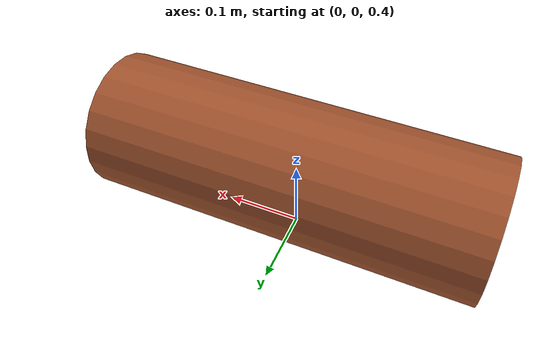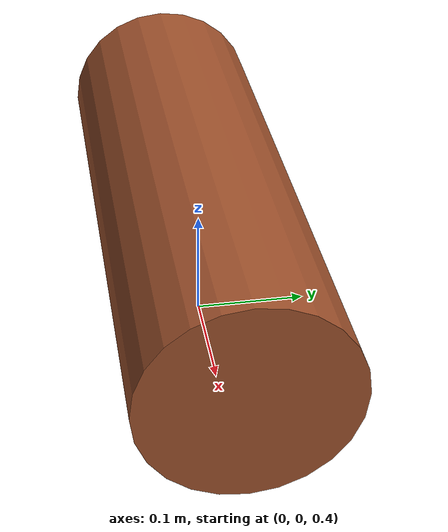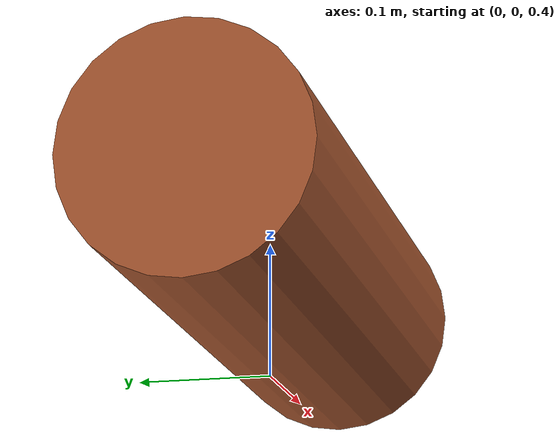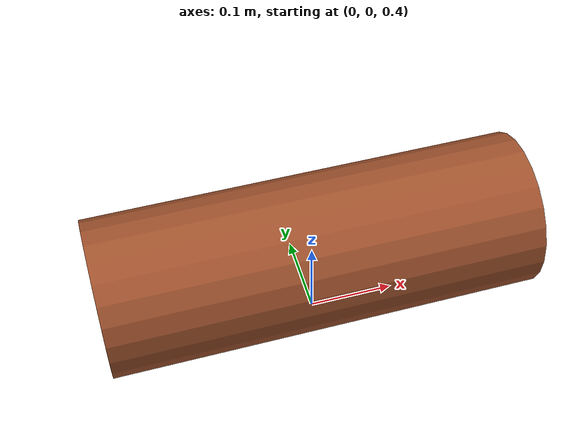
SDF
<sdf version='1.6'>
	<model name='shoe_lace'>
    <link name="shoe_lace">
      <pose> 0.0 0 0.50 1.57079 0 1.57079</pose>
      <inertial>
        <pose frame=''>0 0 0 0 0 0</pose>
        <mass>10</mass>
        <inertia>
          <ixx>1</ixx>
          <ixy>0</ixy>
          <ixz>0</ixz>
          <iyy>1</iyy>
          <iyz>0</iyz>
          <izz>1</izz>
        </inertia>
      </inertial>
      <visual name='cylinder'>
        <pose frame=''> 0 0 0 0 0 0 </pose>
        <geometry>
          <cylinder>
          <radius>0.09</radius>
          <length>0.5</length>
          </cylinder>
        </geometry>
        <material>
          <diffuse>0.627451 0.321569 0.176471 1.0</diffuse>
        </material>
      </visual>

      <collision name='cylinder'>
        <pose frame=''> 0 0 0 0 0 0 </pose>
        <geometry>
          <cylinder>
          <radius>0.09</radius>
          <length>0.5</length>
          </cylinder>
        </geometry>

        <surface>
          <friction>
          <ode>
            <mu>0.3</mu>
            <mu2>0.3</mu2>
          </ode>
          </friction>
        </surface>
      </collision>

      <!-- TODO: Put collision here -->
    </link>
    <joint name="base_weld" type="fixed">
      <child>shoe_lace</child>
      <parent>world</parent>
    </joint>

  </model>

</sdf>
